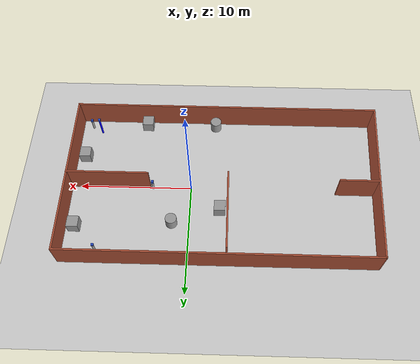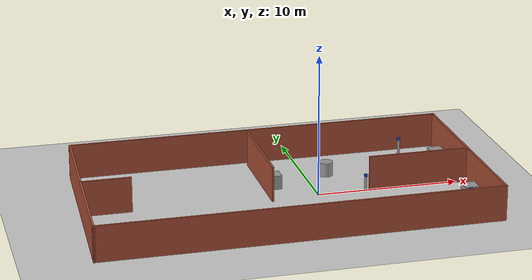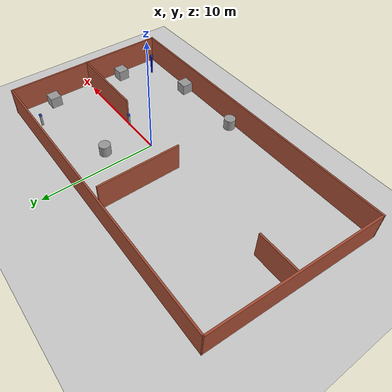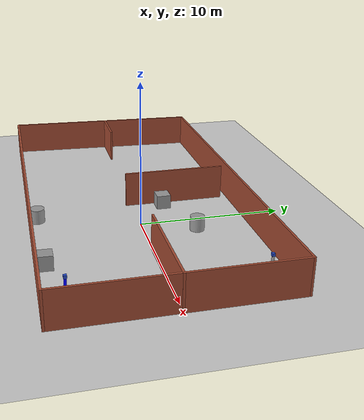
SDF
<sdf version="1.7">
 <world name="simulate_indoor">
  <model name="ground_plane">
   <static>1</static>
   <link name="link">
    <collision name="collision">
     <geometry><plane><normal>0 0 1</normal><size>100 100</size></plane></geometry>
     <surface>
      <contact><collide_bitmask>65535</collide_bitmask></contact>
      <friction><ode><mu>100</mu><mu2>50</mu2></ode></friction>
     </surface>
    </collision>
    <visual name="visual">
     <cast_shadows>0</cast_shadows>
     <geometry><plane><normal>0 0 1</normal><size>100 100</size></plane></geometry>
     <material>
      <script><uri>file://media/materials/scripts/gazebo.material</uri><name>Gazebo/Grey</name></script>
     </material>
    </visual>
   </link>
  </model>
  <model name="building">
   <pose>-2.99227 -0.06522 0 0 -0 0</pose>
   <link name="Wall_0">
    <collision name="Wall_0_Collision">
     <geometry><box><size>27 0.15 2.5</size></box></geometry>
     <pose>0 0 1.25 0 -0 0</pose>
    </collision>
    <visual name="Wall_0_Visual">
     <pose>0 0 1.25 0 -0 0</pose>
     <geometry><box><size>27 0.15 2.5</size></box></geometry>
     <material>
      <script><uri>file://media/materials/scripts/gazebo.material</uri><name>Gazebo/Bricks</name></script>
      <ambient>1 1 1 1</ambient>
     </material>
     <meta><layer>0</layer></meta>
    </visual>
    <pose>0.372733 7.425 0 0 -0 0</pose>
   </link>
   <link name="Wall_1">
    <collision name="Wall_1_Collision">
     <geometry><box><size>15 0.15 2.5</size></box></geometry>
     <pose>0 0 1.25 0 -0 0</pose>
    </collision>
    <visual name="Wall_1_Visual">
     <pose>0 0 1.25 0 -0 0</pose>
     <geometry><box><size>15 0.15 2.5</size></box></geometry>
     <material>
      <script><uri>file://media/materials/scripts/gazebo.material</uri><name>Gazebo/Bricks</name></script>
      <ambient>1 1 1 1</ambient>
     </material>
     <meta><layer>0</layer></meta>
    </visual>
    <pose>13.7977 -0 0 0 -0 -1.5708</pose>
   </link>
   <link name="Wall_2">
    <collision name="Wall_2_Collision">
     <geometry><box><size>27.75 0.15 2.5</size></box></geometry>
     <pose>0 0 1.25 0 -0 0</pose>
    </collision>
    <visual name="Wall_2_Visual">
     <pose>0 0 1.25 0 -0 0</pose>
     <geometry><box><size>27.75 0.15 2.5</size></box></geometry>
     <material>
      <script><uri>file://media/materials/scripts/gazebo.material</uri><name>Gazebo/Bricks</name></script>
      <ambient>1 1 1 1</ambient>
     </material>
     <meta><layer>0</layer></meta>
    </visual>
    <pose>-0.002267 -7.425 0 0 -0 3.14159</pose>
   </link>
   <link name="Wall_3">
    <collision name="Wall_3_Collision">
     <geometry><box><size>15.0189 0.15 2.5</size></box></geometry>
     <pose>0 0 1.25 0 -0 0</pose>
    </collision>
    <visual name="Wall_3_Visual">
     <pose>0 0 1.25 0 -0 0</pose>
     <geometry><box><size>15.0189 0.15 2.5</size></box></geometry>
     <material>
      <script><uri>file://media/materials/scripts/gazebo.material</uri><name>Gazebo/Bricks</name></script>
      <ambient>1 1 1 1</ambient>
     </material>
     <meta><layer>0</layer></meta>
    </visual>
    <pose>-13.4273 -0 0 0 -0 1.52033</pose>
   </link>
   <link name="Wall_5">
    <collision name="Wall_5_Collision">
     <geometry><box><size>7.25 0.15 2.5</size></box></geometry>
     <pose>0 0 1.25 0 -0 0</pose>
    </collision>
    <visual name="Wall_5_Visual">
     <pose>0 0 1.25 0 -0 0</pose>
     <geometry><box><size>7.25 0.15 2.5</size></box></geometry>
     <material>
      <script><uri>file://media/materials/scripts/gazebo.material</uri><name>Gazebo/Bricks</name></script>
      <ambient>1 1 1 1</ambient>
     </material>
     <meta><layer>0</layer></meta>
    </visual>
    <pose>-0.326732 3.28323 0 0 -0 -1.5708</pose>
   </link>
   <link name="Wall_7">
    <collision name="Wall_7_Collision">
     <geometry><box><size>7.25 0.15 2.5</size></box></geometry>
     <pose>0 0 1.25 0 -0 0</pose>
    </collision>
    <visual name="Wall_7_Visual">
     <pose>0 0 1.25 0 -0 0</pose>
     <geometry><box><size>7.25 0.15 2.5</size></box></geometry>
     <material>
      <script><uri>file://media/materials/scripts/gazebo.material</uri><name>Gazebo/Bricks</name></script>
      <ambient>1 1 1 1</ambient>
     </material>
     <meta><layer>0</layer></meta>
    </visual>
    <pose>10.256 0.022164 0 0 -0 3.14159</pose>
   </link>
   <link name="Wall_9">
    <collision name="Wall_9_Collision">
     <geometry><box><size>3.5 0.15 2.5</size></box></geometry>
     <pose>0 0 1.25 0 -0 0</pose>
    </collision>
    <visual name="Wall_9_Visual">
     <pose>0 0 1.25 0 -0 0</pose>
     <geometry><box><size>3.5 0.15 2.5</size></box></geometry>
     <material>
      <script><uri>file://media/materials/scripts/gazebo.material</uri><name>Gazebo/Bricks</name></script>
      <ambient>1 1 1 1</ambient>
     </material>
     <meta><layer>0</layer></meta>
    </visual>
    <pose>-11.7138 0.297477 0 0 -0 0</pose>
   </link>
   <static>1</static>
  </model>
  <model name="UWB_1">
   <link name="link_1">
    <inertial>
     <mass>1</mass>
     <inertia><ixx>0.145833</ixx><ixy>0</ixy><ixz>0</ixz><iyy>0.145833</iyy><iyz>0</iyz><izz>0.125</izz></inertia>
    </inertial>
    <pose>0 0 0.5 0 -0 0</pose>
    <visual name="visual">
     <geometry><cylinder><radius>0.1</radius><length>1</length></cylinder></geometry>
     <material>
      <lighting>1</lighting>
      <script><uri>file://media/materials/scripts/gazebo.material</uri><name>Gazebo/Grey</name></script>
     </material>
    </visual>
    <collision name="collision">
     <geometry><cylinder><radius>0.1</radius><length>1</length></cylinder></geometry>
     <surface>
      <friction>
       <ode><mu>1</mu><mu2>1</mu2><fdir1>0 0 0</fdir1><slip1>0</slip1><slip2>0</slip2></ode>
       <torsional>
        <coefficient>1</coefficient>
        <patch_radius>0</patch_radius>
        <surface_radius>0</surface_radius>
        <use_patch_radius>1</use_patch_radius>
        <ode><slip>0</slip></ode>
       </torsional>
      </friction>
      <bounce><restitution_coefficient>0</restitution_coefficient><threshold>1e+06</threshold></bounce>
      <contact>
       <collide_without_contact>0</collide_without_contact>
       <collide_without_contact_bitmask>1</collide_without_contact_bitmask>
       <collide_bitmask>1</collide_bitmask>
       <ode>
        <soft_cfm>0</soft_cfm>
        <soft_erp>0.2</soft_erp>
        <kp>1e+13</kp>
        <kd>1</kd>
        <max_vel>0.01</max_vel>
        <min_depth>0</min_depth>
       </ode>
       <bullet>
        <split_impulse>1</split_impulse>
        <split_impulse_penetration_threshold>-0.01</split_impulse_penetration_threshold>
        <soft_cfm>0</soft_cfm>
        <soft_erp>0.2</soft_erp>
        <kp>1e+13</kp>
        <kd>1</kd>
       </bullet>
      </contact>
     </surface>
    </collision>
   </link>
   <link name="link_2">
    <inertial>
     <mass>1</mass>
     <inertia>
      <ixx>0.166667</ixx>
      <ixy>0</ixy>
      <ixz>0</ixz>
      <iyy>0.166667</iyy>
      <iyz>0</iyz>
      <izz>0.166667</izz>
     </inertia>
    </inertial>
    <pose>0 0 1.1 0 -0 0</pose>
    <visual name="visual">
     <geometry><box><size>0.2 0.2 0.2</size></box></geometry>
     <material>
      <lighting>1</lighting>
      <script><uri>file://media/materials/scripts/gazebo.material</uri><name>Gazebo/Blue</name></script>
      <shader type="vertex"><normal_map>__default__</normal_map></shader>
     </material>
    </visual>
    <collision name="collision">
     <geometry><box><size>0.2 0.2 0.2</size></box></geometry>
     <surface>
      <friction>
       <ode><mu>1</mu><mu2>1</mu2><fdir1>0 0 0</fdir1><slip1>0</slip1><slip2>0</slip2></ode>
       <torsional>
        <coefficient>1</coefficient>
        <patch_radius>0</patch_radius>
        <surface_radius>0</surface_radius>
        <use_patch_radius>1</use_patch_radius>
        <ode><slip>0</slip></ode>
       </torsional>
      </friction>
      <bounce><restitution_coefficient>0</restitution_coefficient><threshold>1e+06</threshold></bounce>
      <contact>
       <collide_without_contact>0</collide_without_contact>
       <collide_without_contact_bitmask>1</collide_without_contact_bitmask>
       <collide_bitmask>1</collide_bitmask>
       <ode>
        <soft_cfm>0</soft_cfm>
        <soft_erp>0.2</soft_erp>
        <kp>1e+13</kp>
        <kd>1</kd>
        <max_vel>0.01</max_vel>
        <min_depth>0</min_depth>
       </ode>
       <bullet>
        <split_impulse>1</split_impulse>
        <split_impulse_penetration_threshold>-0.01</split_impulse_penetration_threshold>
        <soft_cfm>0</soft_cfm>
        <soft_erp>0.2</soft_erp>
        <kp>1e+13</kp>
        <kd>1</kd>
       </bullet>
      </contact>
     </surface>
    </collision>
   </link>
   <static>1</static>
   <pose>9.78366 -6.64694 0 0 -0 0</pose>
  </model>
  <model name="UWB_3">
   <link name="link_1">
    <inertial>
     <mass>1</mass>
     <inertia><ixx>0.145833</ixx><ixy>0</ixy><ixz>0</ixz><iyy>0.145833</iyy><iyz>0</iyz><izz>0.125</izz></inertia>
    </inertial>
    <pose>0 0 0.5 0 -0 0</pose>
    <visual name="visual">
     <geometry><cylinder><radius>0.1</radius><length>1</length></cylinder></geometry>
     <material>
      <lighting>1</lighting>
      <script><uri>file://media/materials/scripts/gazebo.material</uri><name>Gazebo/Grey</name></script>
     </material>
    </visual>
    <collision name="collision">
     <geometry><cylinder><radius>0.1</radius><length>1</length></cylinder></geometry>
     <surface>
      <friction>
       <ode><mu>1</mu><mu2>1</mu2><fdir1>0 0 0</fdir1><slip1>0</slip1><slip2>0</slip2></ode>
       <torsional>
        <coefficient>1</coefficient>
        <patch_radius>0</patch_radius>
        <surface_radius>0</surface_radius>
        <use_patch_radius>1</use_patch_radius>
        <ode><slip>0</slip></ode>
       </torsional>
      </friction>
      <bounce><restitution_coefficient>0</restitution_coefficient><threshold>1e+06</threshold></bounce>
      <contact>
       <collide_without_contact>0</collide_without_contact>
       <collide_without_contact_bitmask>1</collide_without_contact_bitmask>
       <collide_bitmask>1</collide_bitmask>
       <ode>
        <soft_cfm>0</soft_cfm>
        <soft_erp>0.2</soft_erp>
        <kp>1e+13</kp>
        <kd>1</kd>
        <max_vel>0.01</max_vel>
        <min_depth>0</min_depth>
       </ode>
       <bullet>
        <split_impulse>1</split_impulse>
        <split_impulse_penetration_threshold>-0.01</split_impulse_penetration_threshold>
        <soft_cfm>0</soft_cfm>
        <soft_erp>0.2</soft_erp>
        <kp>1e+13</kp>
        <kd>1</kd>
       </bullet>
      </contact>
     </surface>
    </collision>
   </link>
   <link name="link_2">
    <inertial>
     <mass>1</mass>
     <inertia>
      <ixx>0.166667</ixx>
      <ixy>0</ixy>
      <ixz>0</ixz>
      <iyy>0.166667</iyy>
      <iyz>0</iyz>
      <izz>0.166667</izz>
     </inertia>
    </inertial>
    <pose>0 0 1.1 0 -0 0</pose>
    <visual name="visual">
     <geometry><box><size>0.2 0.2 0.2</size></box></geometry>
     <material>
      <lighting>1</lighting>
      <script><uri>file://media/materials/scripts/gazebo.material</uri><name>Gazebo/Blue</name></script>
      <shader type="vertex"><normal_map>__default__</normal_map></shader>
     </material>
    </visual>
    <collision name="collision">
     <geometry><box><size>0.2 0.2 0.2</size></box></geometry>
     <surface>
      <friction>
       <ode><mu>1</mu><mu2>1</mu2><fdir1>0 0 0</fdir1><slip1>0</slip1><slip2>0</slip2></ode>
       <torsional>
        <coefficient>1</coefficient>
        <patch_radius>0</patch_radius>
        <surface_radius>0</surface_radius>
        <use_patch_radius>1</use_patch_radius>
        <ode><slip>0</slip></ode>
       </torsional>
      </friction>
      <bounce><restitution_coefficient>0</restitution_coefficient><threshold>1e+06</threshold></bounce>
      <contact>
       <collide_without_contact>0</collide_without_contact>
       <collide_without_contact_bitmask>1</collide_without_contact_bitmask>
       <collide_bitmask>1</collide_bitmask>
       <ode>
        <soft_cfm>0</soft_cfm>
        <soft_erp>0.2</soft_erp>
        <kp>1e+13</kp>
        <kd>1</kd>
        <max_vel>0.01</max_vel>
        <min_depth>0</min_depth>
       </ode>
       <bullet>
        <split_impulse>1</split_impulse>
        <split_impulse_penetration_threshold>-0.01</split_impulse_penetration_threshold>
        <soft_cfm>0</soft_cfm>
        <soft_erp>0.2</soft_erp>
        <kp>1e+13</kp>
        <kd>1</kd>
       </bullet>
      </contact>
     </surface>
    </collision>
   </link>
   <static>1</static>
   <pose>7.85671 6.31356 0.057107 0 -0 0</pose>
  </model>
  <model name="UWB_6">
   <link name="link_1">
    <inertial>
     <mass>1</mass>
     <inertia><ixx>0.145833</ixx><ixy>0</ixy><ixz>0</ixz><iyy>0.145833</iyy><iyz>0</iyz><izz>0.125</izz></inertia>
    </inertial>
    <pose>0 0 0.5 0 -0 0</pose>
    <visual name="visual">
     <geometry><cylinder><radius>0.1</radius><length>1</length></cylinder></geometry>
     <material>
      <lighting>1</lighting>
      <script><uri>file://media/materials/scripts/gazebo.material</uri><name>Gazebo/Grey</name></script>
     </material>
    </visual>
    <collision name="collision">
     <geometry><cylinder><radius>0.1</radius><length>1</length></cylinder></geometry>
     <surface>
      <friction>
       <ode><mu>1</mu><mu2>1</mu2><fdir1>0 0 0</fdir1><slip1>0</slip1><slip2>0</slip2></ode>
       <torsional>
        <coefficient>1</coefficient>
        <patch_radius>0</patch_radius>
        <surface_radius>0</surface_radius>
        <use_patch_radius>1</use_patch_radius>
        <ode><slip>0</slip></ode>
       </torsional>
      </friction>
      <bounce><restitution_coefficient>0</restitution_coefficient><threshold>1e+06</threshold></bounce>
      <contact>
       <collide_without_contact>0</collide_without_contact>
       <collide_without_contact_bitmask>1</collide_without_contact_bitmask>
       <collide_bitmask>1</collide_bitmask>
       <ode>
        <soft_cfm>0</soft_cfm>
        <soft_erp>0.2</soft_erp>
        <kp>1e+13</kp>
        <kd>1</kd>
        <max_vel>0.01</max_vel>
        <min_depth>0</min_depth>
       </ode>
       <bullet>
        <split_impulse>1</split_impulse>
        <split_impulse_penetration_threshold>-0.01</split_impulse_penetration_threshold>
        <soft_cfm>0</soft_cfm>
        <soft_erp>0.2</soft_erp>
        <kp>1e+13</kp>
        <kd>1</kd>
       </bullet>
      </contact>
     </surface>
    </collision>
   </link>
   <link name="link_2">
    <inertial>
     <mass>1</mass>
     <inertia>
      <ixx>0.166667</ixx>
      <ixy>0</ixy>
      <ixz>0</ixz>
      <iyy>0.166667</iyy>
      <iyz>0</iyz>
      <izz>0.166667</izz>
     </inertia>
    </inertial>
    <pose>0 0 1.1 0 -0 0</pose>
    <visual name="visual">
     <geometry><box><size>0.2 0.2 0.2</size></box></geometry>
     <material>
      <lighting>1</lighting>
      <script><uri>file://media/materials/scripts/gazebo.material</uri><name>Gazebo/Blue</name></script>
      <shader type="vertex"><normal_map>__default__</normal_map></shader>
     </material>
    </visual>
    <collision name="collision">
     <geometry><box><size>0.2 0.2 0.2</size></box></geometry>
     <surface>
      <friction>
       <ode><mu>1</mu><mu2>1</mu2><fdir1>0 0 0</fdir1><slip1>0</slip1><slip2>0</slip2></ode>
       <torsional>
        <coefficient>1</coefficient>
        <patch_radius>0</patch_radius>
        <surface_radius>0</surface_radius>
        <use_patch_radius>1</use_patch_radius>
        <ode><slip>0</slip></ode>
       </torsional>
      </friction>
      <bounce><restitution_coefficient>0</restitution_coefficient><threshold>1e+06</threshold></bounce>
      <contact>
       <collide_without_contact>0</collide_without_contact>
       <collide_without_contact_bitmask>1</collide_without_contact_bitmask>
       <collide_bitmask>1</collide_bitmask>
       <ode>
        <soft_cfm>0</soft_cfm>
        <soft_erp>0.2</soft_erp>
        <kp>1e+13</kp>
        <kd>1</kd>
        <max_vel>0.01</max_vel>
        <min_depth>0</min_depth>
       </ode>
       <bullet>
        <split_impulse>1</split_impulse>
        <split_impulse_penetration_threshold>-0.01</split_impulse_penetration_threshold>
        <soft_cfm>0</soft_cfm>
        <soft_erp>0.2</soft_erp>
        <kp>1e+13</kp>
        <kd>1</kd>
       </bullet>
      </contact>
     </surface>
    </collision>
   </link>
   <static>1</static>
   <pose>3.42214 0.030428 0 0 -0 0</pose>
  </model>
  <model name="unit_cylinder">
   <pose>1.54339 3.56564 0.499991 0 -0 0</pose>
   <link name="link">
    <inertial>
     <mass>1</mass>
     <inertia><ixx>0.145833</ixx><ixy>0</ixy><ixz>0</ixz><iyy>0.145833</iyy><iyz>0</iyz><izz>0.125</izz></inertia>
    </inertial>
    <collision name="collision">
     <geometry><cylinder><radius>0.5</radius><length>1</length></cylinder></geometry>
    </collision>
    <visual name="visual">
     <geometry><cylinder><radius>0.5</radius><length>1</length></cylinder></geometry>
     <material>
      <script><name>Gazebo/Grey</name><uri>file://media/materials/scripts/gazebo.material</uri></script>
     </material>
    </visual>
   </link>
  </model>
  <model name="unit_box_0">
   <pose>4.45227 -6.90665 0.523523 -0.017223 -0.03045 -0.000116</pose>
   <link name="link">
    <inertial>
     <mass>1</mass>
     <inertia>
      <ixx>0.166667</ixx>
      <ixy>0</ixy>
      <ixz>0</ixz>
      <iyy>0.166667</iyy>
      <iyz>0</iyz>
      <izz>0.166667</izz>
     </inertia>
    </inertial>
    <collision name="collision"><geometry><box><size>1 1 1</size></box></geometry></collision>
    <visual name="visual">
     <geometry><box><size>1 1 1</size></box></geometry>
     <material>
      <script><name>Gazebo/Grey</name><uri>file://media/materials/scripts/gazebo.material</uri></script>
     </material>
    </visual>
   </link>
  </model>
  <model name="unit_box_3">
   <pose>-2.63275 2.17457 0.499995 0 1e-05 0</pose>
   <link name="link">
    <inertial>
     <mass>1</mass>
     <inertia>
      <ixx>0.166667</ixx>
      <ixy>0</ixy>
      <ixz>0</ixz>
      <iyy>0.166667</iyy>
      <iyz>0</iyz>
      <izz>0.166667</izz>
     </inertia>
    </inertial>
    <collision name="collision"><geometry><box><size>1 1 1</size></box></geometry></collision>
    <visual name="visual">
     <geometry><box><size>1 1 1</size></box></geometry>
     <material>
      <script><name>Gazebo/Grey</name><uri>file://media/materials/scripts/gazebo.material</uri></script>
     </material>
    </visual>
   </link>
  </model>
  <model name="unit_box_5">
   <pose>9.94596 4.07047 0.499995 0 1e-05 0</pose>
   <link name="link">
    <inertial>
     <mass>1</mass>
     <inertia>
      <ixx>0.166667</ixx>
      <ixy>0</ixy>
      <ixz>0</ixz>
      <iyy>0.166667</iyy>
      <iyz>0</iyz>
      <izz>0.166667</izz>
     </inertia>
    </inertial>
    <collision name="collision"><geometry><box><size>1 1 1</size></box></geometry></collision>
    <visual name="visual">
     <geometry><box><size>1 1 1</size></box></geometry>
     <material>
      <script><name>Gazebo/Grey</name><uri>file://media/materials/scripts/gazebo.material</uri></script>
     </material>
    </visual>
   </link>
  </model>
  <model name="unit_box_7">
   <pose>9.91807 -3.16856 0.499995 0 1e-05 0</pose>
   <link name="link">
    <inertial>
     <mass>1</mass>
     <inertia>
      <ixx>0.166667</ixx>
      <ixy>0</ixy>
      <ixz>0</ixz>
      <iyy>0.166667</iyy>
      <iyz>0</iyz>
      <izz>0.166667</izz>
     </inertia>
    </inertial>
    <collision name="collision"><geometry><box><size>1 1 1</size></box></geometry></collision>
    <visual name="visual">
     <geometry><box><size>1 1 1</size></box></geometry>
     <material>
      <script><name>Gazebo/Grey</name><uri>file://media/materials/scripts/gazebo.material</uri></script>
     </material>
    </visual>
   </link>
  </model>
  <model name="unit_cylinder_1">
   <pose>-2.03179 -6.91499 0.499997 4e-06 4e-06 -0.023916</pose>
   <link name="link">
    <inertial>
     <mass>1</mass>
     <inertia><ixx>0.145833</ixx><ixy>0</ixy><ixz>0</ixz><iyy>0.145833</iyy><iyz>0</iyz><izz>0.125</izz></inertia>
    </inertial>
    <collision name="collision">
     <geometry><cylinder><radius>0.5</radius><length>1</length></cylinder></geometry>
    </collision>
    <visual name="visual">
     <geometry><cylinder><radius>0.5</radius><length>1</length></cylinder></geometry>
     <material>
      <script><name>Gazebo/Grey</name><uri>file://media/materials/scripts/gazebo.material</uri></script>
     </material>
    </visual>
   </link>
  </model>
  <model name="UWB_7">
   <link name="link_1">
    <inertial>
     <mass>1</mass>
     <inertia><ixx>0.145833</ixx><ixy>0</ixy><ixz>0</ixz><iyy>0.145833</iyy><iyz>0</iyz><izz>0.125</izz></inertia>
    </inertial>
    <pose>0 0 0.95 0 -0 0</pose>
    <visual name="visual">
     <geometry><cylinder><radius>0.08</radius><length>1.9</length></cylinder></geometry>
     <material>
      <lighting>1</lighting>
      <script><uri>file://media/materials/scripts/gazebo.material</uri><name>Gazebo/Grey</name></script>
      <shader type="pixel"><normal_map>__default__</normal_map></shader>
      <ambient>0 0 1 1</ambient>
      <diffuse>0 0 1 1</diffuse>
      <specular>0 0 1 1</specular>
      <emissive>0 0 1 1</emissive>
     </material>
    </visual>
    <collision name="collision">
     <geometry><cylinder><radius>0.08</radius><length>1.9</length></cylinder></geometry>
     <surface>
      <friction>
       <ode><mu>1</mu><mu2>1</mu2><fdir1>0 0 0</fdir1><slip1>0</slip1><slip2>0</slip2></ode>
       <torsional>
        <coefficient>1</coefficient>
        <patch_radius>0</patch_radius>
        <surface_radius>0</surface_radius>
        <use_patch_radius>1</use_patch_radius>
        <ode><slip>0</slip></ode>
       </torsional>
      </friction>
      <bounce><restitution_coefficient>0</restitution_coefficient><threshold>1e+06</threshold></bounce>
      <contact>
       <collide_without_contact>0</collide_without_contact>
       <collide_without_contact_bitmask>1</collide_without_contact_bitmask>
       <collide_bitmask>1</collide_bitmask>
       <ode>
        <soft_cfm>0</soft_cfm>
        <soft_erp>0.2</soft_erp>
        <kp>1e+13</kp>
        <kd>1</kd>
        <max_vel>0.01</max_vel>
        <min_depth>0</min_depth>
       </ode>
       <bullet>
        <split_impulse>1</split_impulse>
        <split_impulse_penetration_threshold>-0.01</split_impulse_penetration_threshold>
        <soft_cfm>0</soft_cfm>
        <soft_erp>0.2</soft_erp>
        <kp>1e+13</kp>
        <kd>1</kd>
       </bullet>
      </contact>
     </surface>
    </collision>
   </link>
   <link name="link_2">
    <inertial>
     <mass>1</mass>
     <inertia>
      <ixx>0.166667</ixx>
      <ixy>0</ixy>
      <ixz>0</ixz>
      <iyy>0.166667</iyy>
      <iyz>0</iyz>
      <izz>0.166667</izz>
     </inertia>
    </inertial>
    <pose>0 0 1.9 0 -0 0</pose>
    <visual name="visual">
     <geometry><box><size>0.2 0.2 0.2</size></box></geometry>
     <material>
      <lighting>1</lighting>
      <script><uri>file://media/materials/scripts/gazebo.material</uri><name>Gazebo/Blue</name></script>
      <shader type="pixel"><normal_map>__default__</normal_map></shader>
      <ambient>1 0 0 1</ambient>
      <diffuse>1 0 0 1</diffuse>
      <specular>1 0 0 1</specular>
      <emissive>1 0 0 1</emissive>
     </material>
    </visual>
    <collision name="collision">
     <geometry><box><size>0.2 0.2 0.2</size></box></geometry>
     <surface>
      <friction>
       <ode><mu>1</mu><mu2>1</mu2><fdir1>0 0 0</fdir1><slip1>0</slip1><slip2>0</slip2></ode>
       <torsional>
        <coefficient>1</coefficient>
        <patch_radius>0</patch_radius>
        <surface_radius>0</surface_radius>
        <use_patch_radius>1</use_patch_radius>
        <ode><slip>0</slip></ode>
       </torsional>
      </friction>
      <bounce><restitution_coefficient>0</restitution_coefficient><threshold>1e+06</threshold></bounce>
      <contact>
       <collide_without_contact>0</collide_without_contact>
       <collide_without_contact_bitmask>1</collide_without_contact_bitmask>
       <collide_bitmask>1</collide_bitmask>
       <ode>
        <soft_cfm>0</soft_cfm>
        <soft_erp>0.2</soft_erp>
        <kp>1e+13</kp>
        <kd>1</kd>
        <max_vel>0.01</max_vel>
        <min_depth>0</min_depth>
       </ode>
       <bullet>
        <split_impulse>1</split_impulse>
        <split_impulse_penetration_threshold>-0.01</split_impulse_penetration_threshold>
        <soft_cfm>0</soft_cfm>
        <soft_erp>0.2</soft_erp>
        <kp>1e+13</kp>
        <kd>1</kd>
       </bullet>
      </contact>
     </surface>
    </collision>
   </link>
   <static>1</static>
   <pose>8.85636 -6.08296 0 0 -0 0</pose>
  </model>
 </world>
</sdf>
